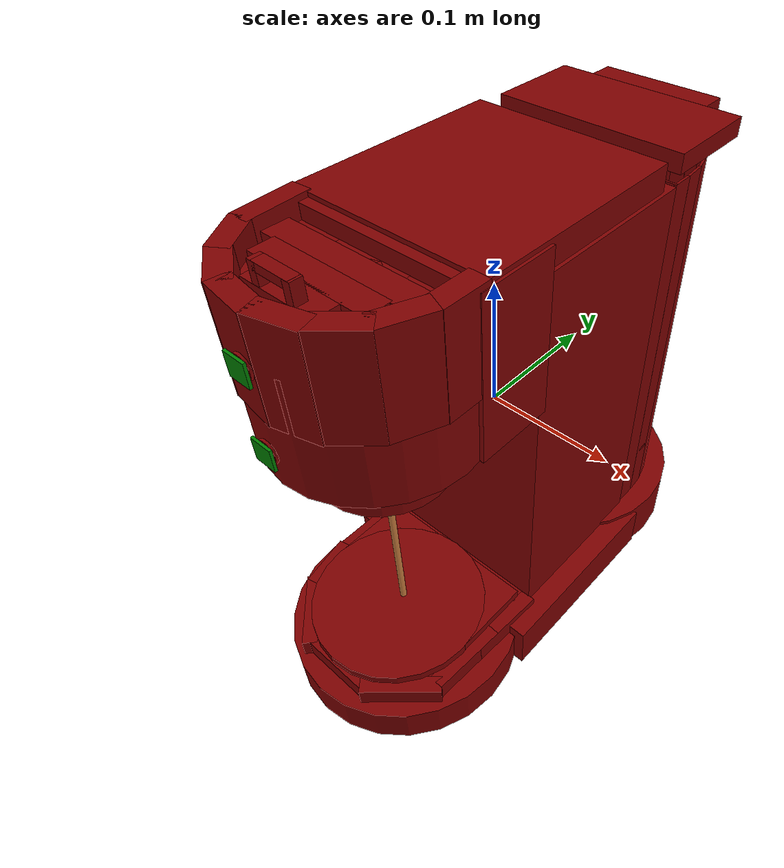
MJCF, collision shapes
<?xml version='1.0' encoding='UTF-8'?>
<mujoco model="model">
  <compiler angle="radian"/>
  <asset>
    <mesh file="visuals/Body001.obj" name="Body001_vis"/>
    <mesh file="visuals/Button001.obj" name="Button001_vis"/>
    <mesh file="visuals/Button002.obj" name="Button002_vis"/>
    <mesh file="visuals/Container001_Clear.obj" name="Container001_Clear_vis"/>
    <mesh file="visuals/Lid001.obj" name="Lid001_vis"/>
    <mesh file="visuals/Lid002.obj" name="Lid002_vis"/>
    <mesh file="visuals/Lid003.obj" name="Lid003_vis"/>
    <texture file="visuals/T_BC001.png" name="Body001_material" type="2d"/>
    <material name="Body001_material" rgba="1 1 1 1.0" texture="Body001_material" shininess="0.4472135901451111" specular="0.3103448502657381"/>
    <texture file="visuals/T_BC001.png" name="Button001_material" type="2d"/>
    <material name="Button001_material" rgba="1 1 1 1.0" texture="Button001_material" shininess="0.4472135901451111" specular="0.3103448502657381"/>
    <texture file="visuals/T_BC001.png" name="Button002_material" type="2d"/>
    <material name="Button002_material" rgba="1 1 1 1.0" texture="Button002_material" shininess="0.4472135901451111" specular="0.3103448502657381"/>
    <texture file="visuals/T_BC001.png" name="Container001_Clear_material" type="2d"/>
    <material name="Container001_Clear_material" rgba="1 1 1 0.699999988079071" texture="Container001_Clear_material" shininess="0.5" specular="0.3103448502657381"/>
    <texture file="visuals/T_BC001.png" name="Lid001_material" type="2d"/>
    <material name="Lid001_material" rgba="1 1 1 1.0" texture="Lid001_material" shininess="0.4472135901451111" specular="0.3103448502657381"/>
    <texture file="visuals/T_BC001.png" name="Lid002_material" type="2d"/>
    <material name="Lid002_material" rgba="1 1 1 1.0" texture="Lid002_material" shininess="0.4472135901451111" specular="0.3103448502657381"/>
    <texture file="visuals/T_BC001.png" name="Lid003_material" type="2d"/>
    <material name="Lid003_material" rgba="1 1 1 1.0" texture="Lid003_material" shininess="0.4472135901451111" specular="0.3103448502657381"/>
  </asset>
  <default>
    <default class="visual">
      <geom conaffinity="0" contype="0" group="1" type="mesh"/>
    </default>
    <default class="collision">
      <geom group="0" rgba="0.5 0 0 0.5"/>
    </default>
    <default class="spawn">
      <geom group="0" rgba="1 1 1 0.5" contype="0" conaffinity="0"/>
      <site group="0" rgba="1 1 1 0.5"/>
    </default>
    <default class="region">
      <geom group="1" conaffinity="0" contype="0" rgba="0 1 0 0"/>
    </default>
  </default>
  <worldbody>
    <body>
      <body name="object">
        <geom class="collision" type="box" pos="-2.948269233869268e-17 -0.18587082624435425 0.1465093046426773" size="0.007981031201779842 0.0009353241184726357 0.007981349714100361" quat="1.0 0.0 0.0 0.0" name="start_button_1" rgba="0.0 0.5 0 0.5"/>
        <geom class="collision" type="box" pos="-2.948269233869268e-17 -0.18587082624435425 0.08811251074075699" size="0.007981031201779842 0.0009353241184726357 0.007981333881616592" quat="1.0 0.0 0.0 0.0" name="start_button_2" rgba="0.0 0.5 0 0.5"/>
        <site type="cylinder" rgba="0.8 0.5 0.25 1" size="0.0024999999441206455 0.0982268825173378" pos="0.00031467899680137634 -0.11012224853038788 -0.042109932750463486" name="coffee_liquid"/>
        <site rgba="0 0 0 0" size="0.009999999776482582 0.009999999776482582" pos="0.0006661872030235827 -0.114625483751297 -0.12866483628749847" name="receptacle_place_site"/>
        <geom mesh="Body001_vis" type="mesh" solimp="0.998 0.998 0.001" solref="0.001 1" density="100" friction="0.95 0.3 0.1" class="visual" material="Body001_material"/>
        <geom class="collision" type="cylinder" pos="0.0003953636041842401 -0.10791197419166565 0.10298163443803787" size="0.07282179594039917 0.04284685105085373" quat="0.7071067094802856 -9.974799297651771e-08 9.974796455480828e-08 -0.7071068286895752"/>
        <geom class="collision" type="cylinder" pos="-9.553154086461291e-05 -0.10791197419166565 0.04306033253669739" size="0.047921355813741684 0.02213575877249241" quat="0.7071067094802856 -9.974799297651771e-08 9.974796455480828e-08 -0.7071068286895752"/>
        <geom class="collision" type="cylinder" pos="-0.00020033589680679142 -0.10798928886651993 -0.17175279557704926" size="0.09065956622362137 0.015744458884000778" quat="0.7071067094802856 -9.974799297651771e-08 9.974796455480828e-08 -0.7071068286895752"/>
        <geom class="collision" type="box" pos="-0.00024792112526483834 0.021215081214904785 -0.014672508463263512" size="0.07339458167552948 0.06481585651636124 0.17278462648391724" quat="1.0 0.0 0.0 0.0"/>
        <geom class="collision" type="box" pos="-0.00046637572813779116 0.020179972052574158 -0.16691318154335022" size="0.07317812740802765 0.09522853046655655 0.020529232919216156" quat="1.0 0.0 0.0 0.0"/>
        <geom class="collision" type="box" pos="-0.0004663611180149019 -0.009012121707201004 0.16965943574905396" size="0.07317636162042618 0.07984057813882828 0.009312508627772331" quat="1.0 0.0 0.0 0.0"/>
        <geom class="collision" type="box" pos="0.0001540931552881375 -0.06784049421548843 0.11798208206892014" size="0.07454882562160492 0.028361203148961067 0.057942572981119156" quat="1.0 0.0 0.0 0.0"/>
        <geom class="collision" type="cylinder" pos="-0.00020029883307870477 0.10856381058692932 -0.1654430329799652" size="0.09065956622362137 0.022012634202837944" quat="0.7071067094802856 -9.974799297651771e-08 9.974796455480828e-08 -0.7071068286895752"/>
        <geom class="collision" type="box" pos="-0.0004663582076318562 0.008499599993228912 -0.16592232882976532" size="0.09092893451452255 0.0798410028219223 0.019284233450889587" quat="1.0 0.0 0.0 0.0"/>
        <geom class="collision" type="box" pos="0.06687212735414505 -0.10434538871049881 0.1444144994020462" size="0.007195968180894852 0.016378531232476234 0.03539353609085083" quat="1.0 0.0 0.0 0.0"/>
        <geom class="collision" type="box" pos="0.06098754703998566 -0.13307012617588043 0.1444144994020462" size="0.007195739541202784 0.016378531232476234 0.03539353609085083" quat="0.9816769361495972 0.0 -0.0 -0.1905527412891388"/>
        <geom class="collision" type="box" pos="0.04453066363930702 -0.15650871396064758 0.1444144994020462" size="0.007195739075541496 0.016378531232476234 0.03539353609085083" quat="0.9118933081626892 0.0 -0.0 -0.41042736172676086"/>
        <geom class="collision" type="box" pos="0.020258253440260887 -0.1702965945005417 0.1444144994020462" size="0.007195739075541496 0.016378531232476234 0.03539353609085083" quat="0.7934345602989197 0.0 -0.0 -0.608655571937561"/>
        <geom class="collision" type="box" pos="-0.008880740031599998 -0.17270827293395996 0.1444144994020462" size="0.007195739075541496 0.016378533095121384 0.03539353609085083" quat="0.6597426533699036 0.0 -0.0 -0.7514916062355042"/>
        <geom class="collision" type="box" pos="-0.03497237712144852 -0.16289399564266205 0.1444144994020462" size="0.007195739075541496 0.016378531232476234 0.03539353609085083" quat="0.46265730261802673 0.0 -0.0 -0.8865371942520142"/>
        <geom class="collision" type="box" pos="-0.05567812919616699 -0.141948863863945 0.1444144994020462" size="0.007195739541202784 0.016378533095121384 0.03539353609085083" quat="0.28488436341285706 0.0 -0.0 -0.958561897277832"/>
        <geom class="collision" type="box" pos="-0.06501366943120956 -0.10915478318929672 0.1444144994020462" size="0.007195739075541496 0.022598210722208023 0.03539353609085083" quat="0.036300625652074814 0.0 -0.0 -0.9993408918380737"/>
        <geom class="collision" type="box" pos="0.031325243413448334 -0.12852205336093903 0.14694316685199738" size="0.007195738144218922 0.016378531232476234 0.01824997551739216" quat="0.9858160614967346 0.0 0.0 0.16782942414283752"/>
        <geom class="collision" type="box" pos="0.02923073060810566 -0.14697371423244476 0.14694316685199738" size="0.007195738144218922 0.016378533095121384 0.01824997551739216" quat="0.9900081753730774 0.0 -0.0 -0.1410098671913147"/>
        <geom class="collision" type="box" pos="0.01367148943245411 -0.16482694447040558 0.14694316685199738" size="0.007195738144218922 0.016378531232476234 0.01824997551739216" quat="0.8371226787567139 0.0 -0.0 -0.5470151901245117"/>
        <geom class="collision" type="box" pos="-0.016250129789114 -0.16482694447040558 0.14694316685199738" size="0.007195738144218922 0.016378531232476234 0.01824997551739216" quat="0.564448893070221 0.0 -0.0 -0.8254680633544922"/>
        <geom class="collision" type="box" pos="-0.029016686603426933 -0.14527814090251923 0.14694316685199738" size="0.007195738609880209 0.016378533095121384 0.01824997551739216" quat="0.17715883255004883 0.0 -0.0 -0.9841822981834412"/>
        <geom class="collision" type="box" pos="-0.026024524122476578 -0.11964529007673264 0.14694316685199738" size="0.007195738144218922 0.016378531232476234 0.01824997551739216" quat="0.20960909128189087 0.0 0.0 0.9777852892875671"/>
        <geom class="collision" type="box" pos="-0.007173905614763498 -0.1085742861032486 0.14694316685199738" size="0.007195738144218922 0.016378531232476234 0.01824997551739216" quat="0.582716703414917 0.0 0.0 0.8126753568649292"/>
        <geom class="collision" type="box" pos="0.016065217554569244 -0.11136697232723236 0.14694316685199738" size="0.007195738144218922 0.016378531232476234 0.01824997551739216" quat="0.8739829063415527 0.0 0.0 0.48595672845840454"/>
        <geom class="collision" type="box" pos="-0.043604083359241486 -0.11619831621646881 0.14694316685199738" size="0.03496185690164566 0.016378531232476234 0.01824997551739216" quat="0.7109041213989258 0.0 0.0 0.7032889127731323"/>
        <geom class="collision" type="box" pos="0.04308725893497467 -0.10465096682310104 0.14694316685199738" size="0.03496185690164566 0.016378531232476234 0.01824997551739216" quat="0.7109041213989258 0.0 0.0 0.7032889127731323"/>
        <geom class="collision" type="box" pos="-0.005687392316758633 -0.09448239952325821 0.14694316685199738" size="0.035072170197963715 0.01661534234881401 0.01824970543384552" quat="1.0 0.0 0.0 0.0"/>
        <geom class="collision" type="box" pos="-9.214214514940977e-05 -0.1777212768793106 -0.15321528911590576" size="0.029950175434350967 0.0058699254877865314 0.012506308034062386" quat="1.0 0.0 0.0 0.0"/>
        <geom class="collision" type="box" pos="-0.04870657995343208 -0.16314634680747986 -0.15321528911590576" size="0.029950175434350967 0.0058699254877865314 0.01250648032873869" quat="0.9295770525932312 0.0 -0.0 -0.3686278164386749"/>
        <geom class="collision" type="box" pos="-0.0713389590382576 -0.12548668682575226 -0.15321528911590576" size="0.021640928462147713 0.005869925022125244 0.01250648032873869" quat="0.7789416313171387 0.0 -0.0 -0.62709641456604"/>
        <geom class="collision" type="box" pos="-0.07222867012023926 -0.07659602910280228 -0.15341897308826447" size="0.007883732207119465 0.0350935123860836 0.012506322003901005" quat="1.0 0.0 0.0 0.0"/>
        <geom class="collision" type="box" pos="0.04934565722942352 -0.1619369089603424 -0.15321528911590576" size="0.029950175434350967 0.0058699254877865314 0.01250648032873869" quat="0.9360183477401733 0.0 0.0 0.3519511818885803"/>
        <geom class="collision" type="box" pos="0.06889834254980087 -0.11412684619426727 -0.15321528911590576" size="0.029950173571705818 0.005869925953447819 0.01250648032873869" quat="0.7243052124977112 0.0 0.0 0.6894795298576355"/>
        <geom class="collision" type="box" pos="0.07093127071857452 -0.07288752496242523 -0.15321528911590576" size="0.029950173571705818 0.005869925953447819 0.01250648032873869" quat="0.7243052124977112 0.0 0.0 0.6894795298576355"/>
        <geom class="collision" type="box" pos="-0.003578096628189087 -0.0483248345553875 -0.15321528911590576" size="0.07281061261892319 0.0063514020293951035 0.01250648032873869" quat="1.0 0.0 0.0 0.0"/>
        <geom class="collision" type="box" pos="-0.0008207526989281178 0.1160675510764122 -0.1207830011844635" size="0.051762115210294724 0.029593821614980698 0.02302439883351326" quat="1.0 0.0 0.0 0.0"/>
        <geom class="collision" type="box" pos="-0.055846892297267914 0.09780094027519226 -0.1207830011844635" size="0.013838727958500385 0.010177098214626312 0.02302439883351326" quat="0.6448501944541931 0.0 -0.0 -0.7643089890480042"/>
        <geom class="collision" type="box" pos="-0.04929765313863754 0.1258937269449234 -0.1207830011844635" size="0.01756536215543747 0.010177097283303738 0.02302439883351326" quat="0.6021688580513 0.0 -0.0 -0.7983687520027161"/>
        <geom class="collision" type="box" pos="0.05411139130592346 0.10038616508245468 -0.1207830011844635" size="0.013838727958500385 0.010177097283303738 0.02302439883351326" quat="0.7653568983078003 0.0 -0.0 -0.6436061263084412"/>
        <geom class="collision" type="box" pos="0.04773450270295143 0.12744486331939697 -0.1207830011844635" size="0.01666109822690487 0.010177097283303738 0.02302439883351326" quat="0.7934543490409851 0.0 -0.0 -0.6086297631263733"/>
        <geom class="collision" type="box" pos="0.0012004324235022068 0.15450355410575867 -0.1207830011844635" size="0.03182024881243706 0.010177096351981163 0.02302439883351326" quat="0.007109657861292362 0.0 0.0 0.9999747276306152"/>
        <body name="Button001">
          <joint axis="0.0 1.0 0.0" pos="-1.2600158416642415e-10 -0.18199700117111206 0.1327911615371704" limited="true" name="Button001_joint" range="0.0 0.002" type="slide" damping="1" frictionloss="1" armature=".01" stiffness="0.05"/>
          <geom mesh="Button001_vis" type="mesh" solimp="0.998 0.998 0.001" solref="0.001 1" density="100" friction="0.95 0.3 0.1" class="visual" material="Button001_material"/>
          <geom class="collision" type="cylinder" pos="1.583150971429248e-10 -0.18347355723381042 0.1465093046426773" size="0.007981031201779842 0.0009353237110190094" quat="0.7071067094802856 0.7071068286895752 -1.5700929612083792e-16 2.2148510003422914e-23"/>
        </body>
        <body name="Button002">
          <joint axis="0.0 1.0 0.0" pos="8.881784197001252e-16 -0.18199701607227325 0.10227258503437042" limited="true" name="Button002_joint" range="0.0 0.002" type="slide" damping="1" frictionloss="1" armature=".01" stiffness="0.05"/>
          <geom mesh="Button002_vis" type="mesh" solimp="0.998 0.998 0.001" solref="0.001 1" density="100" friction="0.95 0.3 0.1" class="visual" material="Button002_material"/>
          <geom class="collision" type="cylinder" pos="1.583150971429248e-10 -0.18347355723381042 0.08811251074075699" size="0.007981031201779842 0.0009353237110190094" quat="0.7071067094802856 0.7071068286895752 -1.5700929612083792e-16 2.2148510003422914e-23"/>
        </body>
        <body name="Container001_Clear">
          <joint axis="0.0 0.0 1.0" pos="-0.0001452751166652888 0.13408488035202026 0.009262150153517723" limited="true" name="Container001_Clear_joint" range="0.0 0.25" type="slide" damping="1" frictionloss="1" armature=".01" stiffness="0.05"/>
          <geom mesh="Container001_Clear_vis" type="mesh" solimp="0.998 0.998 0.001" solref="0.001 1" density="100" friction="0.95 0.3 0.1" class="visual" material="Container001_Clear_material"/>
          <geom class="collision" type="box" pos="0.0 0.08783139288425446 0.03249580040574074" size="0.07229753583669662 0.000867702008690685 0.12645955383777618" quat="1.0 0.0 0.0 0.0"/>
          <geom class="collision" type="box" pos="0.071763776242733 0.09517231583595276 0.00877567008137703" size="0.000867685885168612 0.008236387744545937 0.15017841756343842" quat="1.0 0.0 0.0 0.0"/>
          <geom class="collision" type="box" pos="0.07113846391439438 0.11132614314556122 0.00877567008137703" size="0.008236386813223362 0.0008676854777149856 0.1501796841621399" quat="0.7355442643165588 0.0 -0.0 -0.677476704120636"/>
          <geom class="collision" type="box" pos="0.068220354616642 0.12690676748752594 0.00877567008137703" size="0.008236387744545937 0.0008676854777149856 0.1501796841621399" quat="0.7997764945030212 0.0 -0.0 -0.6002979278564453"/>
          <geom class="collision" type="box" pos="0.06259256601333618 0.14175787568092346 0.00877567008137703" size="0.008236387744545937 0.0008676855359226465 0.1501796841621399" quat="0.8462020754814148 0.0 -0.0 -0.53286212682724"/>
          <geom class="collision" type="box" pos="0.05446354299783707 0.15457671880722046 0.00877567008137703" size="0.008236387744545937 0.0008676854777149856 0.1501796841621399" quat="0.9050172567367554 0.0 -0.0 -0.4253748655319214"/>
          <geom class="collision" type="box" pos="0.04320796951651573 0.16536329686641693 0.00877567008137703" size="0.008236387744545937 0.0008676854777149856 0.1501796841621399" quat="0.9452478885650635 0.0 -0.0 -0.32635319232940674"/>
          <geom class="collision" type="box" pos="0.029399048537015915 0.17354442179203033 0.00877567008137703" size="0.008236387744545937 0.0008676854777149856 0.1501796841621399" quat="0.9768547415733337 0.0 -0.0 -0.21390369534492493"/>
          <geom class="collision" type="box" pos="0.013974746689200401 0.17844268679618835 0.00877567008137703" size="0.008236387744545937 0.0008676854777149856 0.1501796841621399" quat="0.9956012964248657 0.0 -0.0 -0.09369102120399475"/>
          <geom class="collision" type="box" pos="-0.0020227578934282064 0.18011018633842468 0.00877567008137703" size="0.0082477992400527 0.0009836790850386024 0.15017858147621155" quat="1.0 0.0 0.0 0.0"/>
          <geom class="collision" type="box" pos="-0.017342843115329742 0.1779216080904007 0.00877567008137703" size="0.008236387744545937 0.0008676854777149856 0.1501796841621399" quat="0.9906659126281738 0.0 0.0 0.13631248474121094"/>
          <geom class="collision" type="box" pos="-0.03240238502621651 0.17208538949489594 0.00877567008137703" size="0.008236387744545937 0.0008676854777149856 0.1501796841621399" quat="0.971767008304596 0.0 0.0 0.23594249784946442"/>
          <geom class="collision" type="box" pos="-0.04598410800099373 0.16338106989860535 0.00877567008137703" size="0.008236387744545937 0.0008676854777149856 0.1501796841621399" quat="0.9372122287750244 0.0 0.0 0.34875959157943726"/>
          <geom class="collision" type="box" pos="-0.05685393139719963 0.15171247720718384 0.00877567008137703" size="0.008236387744545937 0.0008676854777149856 0.1501796841621399" quat="0.895239531993866 0.0 0.0 0.4455852210521698"/>
          <geom class="collision" type="box" pos="-0.06478489190340042 0.13781067728996277 0.00877567008137703" size="0.008236387744545937 0.0008676854777149856 0.1501796841621399" quat="0.8377159833908081 0.0 0.0 0.5461061596870422"/>
          <geom class="collision" type="box" pos="-0.06966414302587509 0.12239018827676773 0.00877567008137703" size="0.008236387744545937 0.0008676854777149856 0.1501796841621399" quat="0.774505078792572 0.0 0.0 0.6325677037239075"/>
          <geom class="collision" type="box" pos="-0.07165008038282394 0.10651740431785583 0.00877567008137703" size="0.008236387744545937 0.0008676854777149856 0.1501796841621399" quat="0.726760745048523 0.0 0.0 0.6868906617164612"/>
          <geom class="collision" type="box" pos="-0.07196273654699326 0.0952618271112442 0.00877567008137703" size="0.0008891657926142216 0.008238622918725014 0.15017874538898468" quat="1.0 0.0 0.0 0.0"/>
          <geom class="collision" type="box" pos="1.8855098989668535e-17 0.10199393332004547 -0.09333881735801697" size="0.07229753583669662 0.014818835072219372 0.0008676861762069166" quat="1.0 0.0 0.0 0.0"/>
          <geom class="collision" type="box" pos="-1.9950674445823324e-09 0.14763575792312622 -0.09333881735801697" size="0.014818965457379818 0.03156346082687378 0.0008676861762069166" quat="1.0 0.0 0.0 0.0"/>
          <geom class="collision" type="box" pos="-0.05399876832962036 0.12340010702610016 -0.09333881735801697" size="0.013599789701402187 0.0008676854777149856 0.014818834140896797" quat="0.5575211644172668 0.5575211644172668 0.4349369704723358 0.4349369406700134"/>
          <geom class="collision" type="box" pos="-0.044623248279094696 0.1418793946504593 -0.09333881735801697" size="0.013599788770079613 0.0008676854777149856 0.014818833209574223" quat="0.6341441869735718 0.6341441869735718 0.3128277063369751 0.3128276765346527"/>
          <geom class="collision" type="box" pos="-0.02871536836028099 0.15576127171516418 -0.09333881735801697" size="0.013599789701402187 0.0008676854777149856 0.014818834140896797" quat="0.6813051700592041 0.6813051700592041 0.18927040696144104 0.18927039206027985"/>
          <geom class="collision" type="box" pos="-0.015058604069054127 0.16349010169506073 -0.09333881735801697" size="0.013599789701402187 0.0008676854777149856 0.014818833209574223" quat="0.7011620998382568 0.7011621594429016 0.09149672836065292 0.09149674326181412"/>
          <geom class="collision" type="box" pos="-0.025488771498203278 0.12822262942790985 -0.09333881735801697" size="0.021987400949001312 0.019725490361452103 0.0008676900761201978" quat="1.0 0.0 0.0 0.0"/>
          <geom class="collision" type="box" pos="0.032989807426929474 0.13405752182006836 -0.09333881735801697" size="0.021987400949001312 0.019725490361452103 0.0008676887955516577" quat="1.0 0.0 0.0 0.0"/>
          <geom class="collision" type="box" pos="0.0529094859957695 0.12654419243335724 -0.09333881735801697" size="0.013599789701402187 0.0008676854777149856 0.014818833209574223" quat="0.6982990503311157 0.6982991695404053 0.11125801503658295 0.11125798523426056"/>
          <geom class="collision" type="box" pos="0.04503058269619942 0.1430523842573166 -0.09333881735801697" size="0.013599789701402187 0.0008676854777149856 0.014818835072219372" quat="0.6680063009262085 0.6680063009262085 0.23187842965126038 0.23187841475009918"/>
          <geom class="collision" type="box" pos="0.022069208323955536 0.1601608693599701 -0.09333881735801697" size="0.013599789701402187 0.0008676854777149856 0.014818835072219372" quat="0.693598210811615 0.6935982704162598 -0.13755536079406738 -0.13755536079406738"/>
          <geom class="collision" type="box" pos="0.03257441148161888 0.15400782227516174 -0.09333881735801697" size="0.013599788770079613 0.0008676854777149856 0.014818833209574223" quat="0.6727140545845032 0.6727142930030823 -0.217843160033226 -0.21784311532974243"/>
          <body name="Lid001">
            <joint axis="1.0 0.0 0.0" pos="5.900858468521619e-06 0.0981777161359787 0.16789987683296204" limited="true" name="Lid001_joint" range="0.0 1.5707963267948966" type="hinge" damping="1" frictionloss="1" armature=".01" stiffness="0.05"/>
            <geom mesh="Lid001_vis" type="mesh" solimp="0.998 0.998 0.001" solref="0.001 1" density="100" friction="0.95 0.3 0.1" class="visual" material="Lid001_material"/>
            <geom class="collision" type="box" pos="-0.0004663616418838501 0.1279647946357727 0.1703113317489624" size="0.07222902774810791 0.03662963956594467 0.00669552106410265" quat="1.0 0.0 0.0 0.0"/>
            <geom class="collision" type="box" pos="-0.0004663616418838501 0.14696352183818817 0.1703113317489624" size="0.04635656252503395 0.03662845864892006 0.006695312913507223" quat="1.0 0.0 0.0 0.0"/>
          </body>
        </body>
        <body name="Lid002">
          <joint axis="0.0 0.0 1.0" pos="0.00011044618440791965 -0.11227728426456451 -0.13704736530780792" limited="true" name="Lid002_joint" range="0.0 0.05" type="slide" damping="1" frictionloss="1" armature=".01" stiffness="0.05"/>
          <geom mesh="Lid002_vis" type="mesh" solimp="0.998 0.998 0.001" solref="0.001 1" density="100" friction="0.95 0.3 0.1" class="visual" material="Lid002_material"/>
          <geom class="collision" type="cylinder" pos="-0.0004181608965154737 -0.11474987864494324 -0.13656441867351532" size="0.06775422394275665 0.0035865558311343193" quat="0.7071067094802856 -9.974799297651771e-08 9.974796455480828e-08 -0.7071068286895752"/>
          <geom class="collision" type="box" pos="-0.0004941118531860411 -0.08094990253448486 -0.13649201393127441" size="0.06740120053291321 0.031245242804288864 0.0034450129605829716" quat="1.0 0.0 0.0 0.0"/>
        </body>
        <body name="Lid003">
          <joint axis="-1.0 0.0 0.0" pos="0.00019782032177317888 -0.10800474137067795 0.16940335929393768" limited="true" name="Lid003_joint" range="0.0 1.5707963267948966" type="hinge" damping="1" frictionloss="1" armature=".01" stiffness="0.05"/>
          <geom mesh="Lid003_vis" type="mesh" solimp="0.998 0.998 0.001" solref="0.001 1" density="100" friction="0.95 0.3 0.1" class="visual" material="Lid003_material"/>
          <geom class="collision" type="box" pos="0.0007208138704299927 -0.11711383610963821 0.1704760193824768" size="0.05353434011340141 0.009511071257293224 0.0031891311518847942" quat="1.0 0.0 0.0 0.0"/>
          <geom class="collision" type="box" pos="0.000999760115519166 -0.13353607058525085 0.1704760491847992" size="0.044130388647317886 0.008817766793072224 0.0031892061233520508" quat="1.0 0.0 0.0 0.0"/>
          <geom class="collision" type="box" pos="-0.013136549852788448 -0.15437345206737518 0.17834995687007904" size="0.002821230096742511 0.004049687646329403 0.009225565008819103" quat="1.0 0.0 0.0 0.0"/>
          <geom class="collision" type="box" pos="0.000999760115519166 -0.14977912604808807 0.1704760491847992" size="0.027665607631206512 0.008817766793072224 0.0031892023980617523" quat="1.0 0.0 0.0 0.0"/>
          <geom class="collision" type="box" pos="0.012864050455391407 -0.15437345206737518 0.17834995687007904" size="0.002821230096742511 0.004049687646329403 0.009225462563335896" quat="1.0 0.0 0.0 0.0"/>
          <geom class="collision" type="box" pos="0.0006348341703414917 -0.15437345206737518 0.18489867448806763" size="0.013585404492914677 0.00404968811199069 0.0028212328907102346" quat="1.0 0.0 0.0 0.0"/>
        </body>
        <geom class="region" name="reg_main" type="box" pos="1.4484544674786548e-09 0.0 5.793817869914619e-09" size="0.09140989184379578 0.20013372600078583 0.18780095875263214"/>
      </body>
    </body>
  </worldbody>
  <actuator>
    <motor name="Button001_joint_actuator" joint="Button001_joint" gear="0.5"/>
    <motor name="Button002_joint_actuator" joint="Button002_joint" gear="0.5"/>
    <motor name="Container001_Clear_joint_actuator" joint="Container001_Clear_joint" gear="10"/>
    <motor name="Lid002_joint_actuator" joint="Lid002_joint" gear="10"/>
    <motor name="Lid003_joint_actuator" joint="Lid003_joint" gear="10"/>
    <motor name="Lid001_joint_actuator" joint="Lid001_joint" gear="10"/>
  </actuator>
</mujoco>
